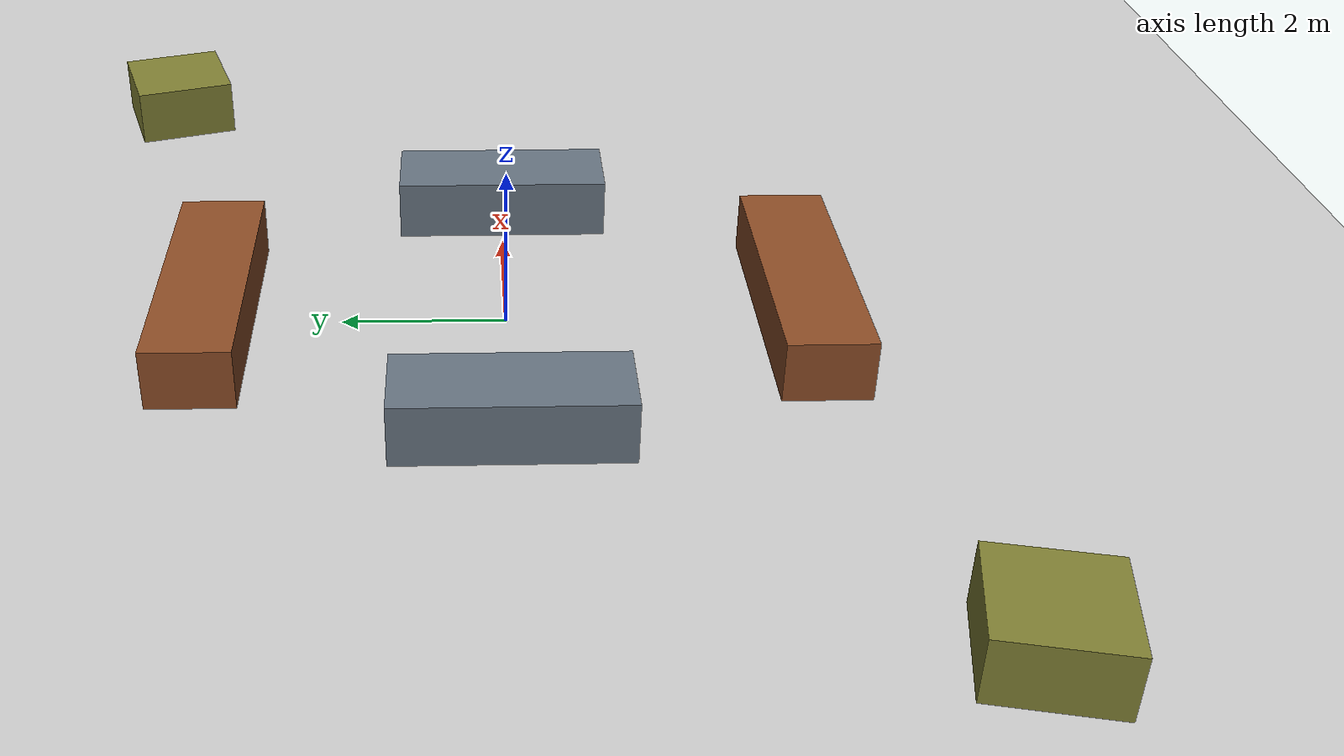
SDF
<sdf version="1.8">
 <world name="boxes_b">
  <scene><grid>false</grid></scene>
  <physics name="1ms" type="ignored">
   <max_step_size>0.002</max_step_size>
   <real_time_factor>1.0</real_time_factor>
  </physics>
  <plugin filename="libignition-gazebo-physics-system.so" name="ignition::gazebo::systems::Physics"/>
  <plugin filename="libignition-gazebo-sensors-system.so" name="ignition::gazebo::systems::Sensors">
   <render_engine>ogre</render_engine>
   <namespace>test</namespace>
  </plugin>
  <plugin filename="ignition-gazebo-imu-system" name="ignition::gazebo::systems::Imu"/>
  <plugin filename="libignition-gazebo-user-commands-system.so" name="ignition::gazebo::systems::UserCommands"/>
  <plugin filename="libignition-gazebo-scene-broadcaster-system.so" name="ignition::gazebo::systems::SceneBroadcaster"/>
  <light type="directional" name="sun">
   <cast_shadows>false</cast_shadows>
   <pose>0 0 10 0 0 0</pose>
   <diffuse>0.8 0.8 0.8 1</diffuse>
   <specular>0.2 0.2 0.2 1</specular>
   <attenuation>
    <range>1000</range>
    <constant>0.9</constant>
    <linear>0.01</linear>
    <quadratic>0.001</quadratic>
   </attenuation>
   <direction>-0.5 0.1 -0.9</direction>
  </light>
  <model name="ground_plane">
   <static>true</static>
   <link name="link">
    <collision name="collision"><geometry><plane><normal>0.0 0.0 1.0</normal></plane></geometry></collision>
    <visual name="visual">
     <geometry><plane><normal>0.0 0.0 1.0</normal><size>100 100</size></plane></geometry>
     <material>
      <ambient>0.8 0.8 0.8 1</ambient>
      <diffuse>0.8 0.8 0.8 1</diffuse>
      <specular>0.8 0.8 0.8 1</specular>
     </material>
    </visual>
   </link>
  </model>
  <model name="obstacle_1">
   <static>true</static>
   <pose>0.0000 3.6000 0.3750 0 0 0</pose>
   <link name="link">
    <collision name="c"><geometry><box><size>3.6000 1.0500 0.7500</size></box></geometry></collision>
    <visual name="v">
     <geometry><box><size>3.6000 1.0500 0.7500</size></box></geometry>
     <material><ambient>0.55 0.3 0.15 1</ambient><diffuse>0.55 0.3 0.15 1</diffuse></material>
    </visual>
   </link>
  </model>
  <model name="obstacle_2">
   <static>true</static>
   <pose>0.0000 -3.6000 0.3750 0 0 0</pose>
   <link name="link">
    <collision name="c"><geometry><box><size>3.6000 1.0500 0.7500</size></box></geometry></collision>
    <visual name="v">
     <geometry><box><size>3.6000 1.0500 0.7500</size></box></geometry>
     <material><ambient>0.55 0.3 0.15 1</ambient><diffuse>0.55 0.3 0.15 1</diffuse></material>
    </visual>
   </link>
  </model>
  <model name="obstacle_3">
   <static>true</static>
   <pose>-2.4000 0.0000 0.3750 0 0 0</pose>
   <link name="link">
    <collision name="c"><geometry><box><size>1.0500 2.7000 0.7500</size></box></geometry></collision>
    <visual name="v">
     <geometry><box><size>1.0500 2.7000 0.7500</size></box></geometry>
     <material><ambient>0.4 0.45 0.5 1</ambient><diffuse>0.4 0.45 0.5 1</diffuse></material>
    </visual>
   </link>
  </model>
  <model name="obstacle_4">
   <static>true</static>
   <pose>2.7000 0.0000 0.3750 0 0 0</pose>
   <link name="link">
    <collision name="c"><geometry><box><size>1.0500 2.7000 0.7500</size></box></geometry></collision>
    <visual name="v">
     <geometry><box><size>1.0500 2.7000 0.7500</size></box></geometry>
     <material><ambient>0.4 0.45 0.5 1</ambient><diffuse>0.4 0.45 0.5 1</diffuse></material>
    </visual>
   </link>
  </model>
  <model name="obstacle_5">
   <static>true</static>
   <pose>6.0000 4.8000 0.3750 0 0 0.3</pose>
   <link name="link">
    <collision name="c"><geometry><box><size>1.3500 1.3500 0.7500</size></box></geometry></collision>
    <visual name="v">
     <geometry><box><size>1.3500 1.3500 0.7500</size></box></geometry>
     <material><ambient>0.5 0.5 0.2 1</ambient><diffuse>0.5 0.5 0.2 1</diffuse></material>
    </visual>
   </link>
  </model>
  <model name="obstacle_6">
   <static>true</static>
   <pose>-6.0000 -4.8000 0.3750 0 0 -0.2</pose>
   <link name="link">
    <collision name="c"><geometry><box><size>1.3500 1.3500 0.7500</size></box></geometry></collision>
    <visual name="v">
     <geometry><box><size>1.3500 1.3500 0.7500</size></box></geometry>
     <material><ambient>0.5 0.5 0.2 1</ambient><diffuse>0.5 0.5 0.2 1</diffuse></material>
    </visual>
   </link>
  </model>
 </world>
</sdf>
